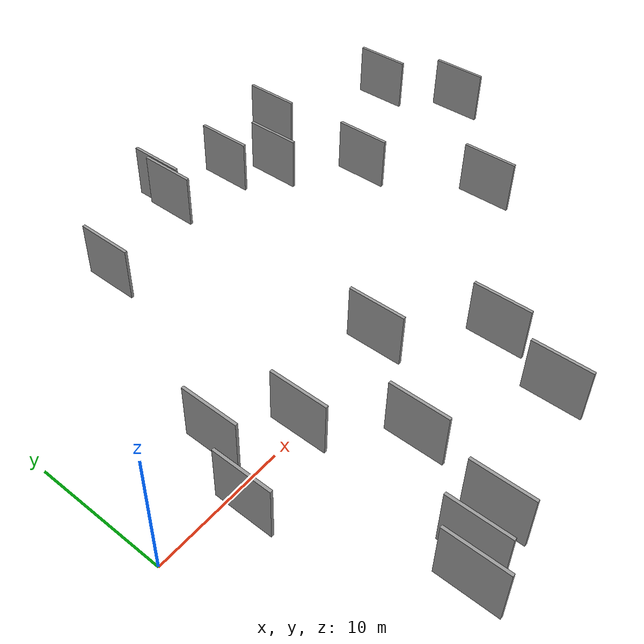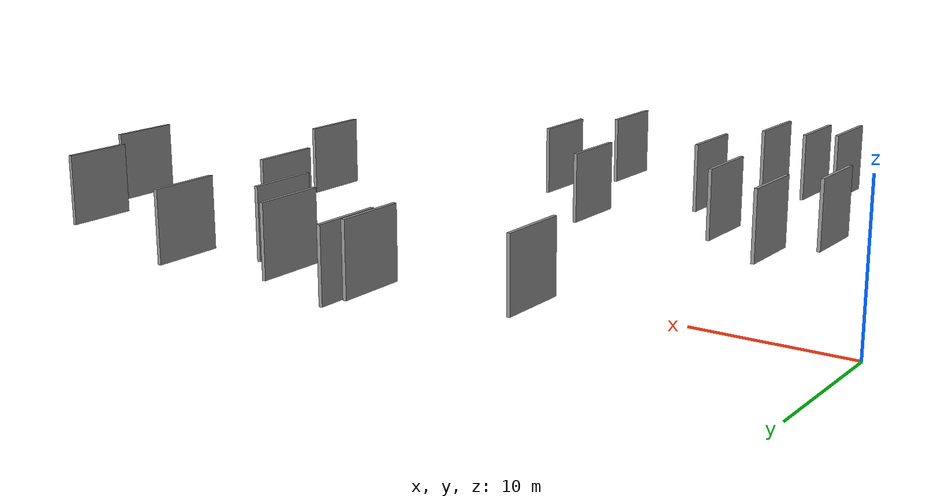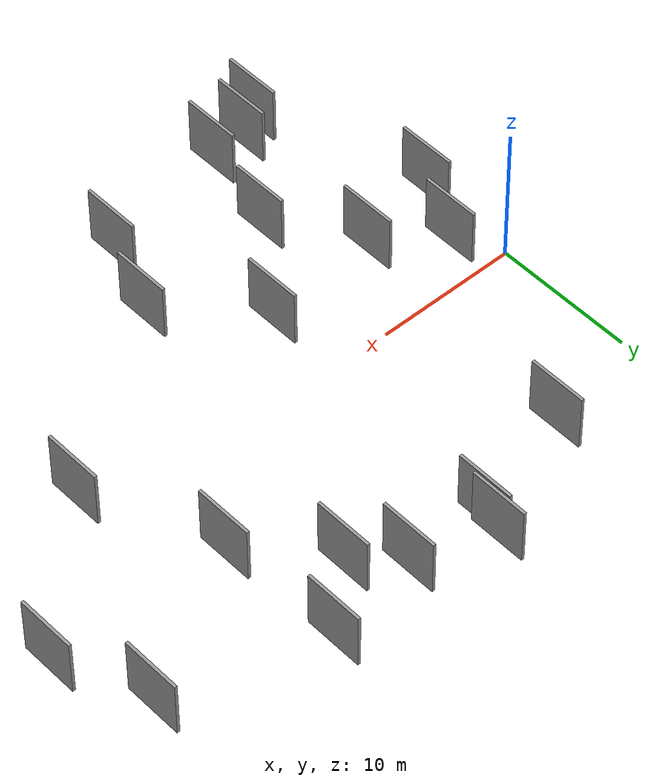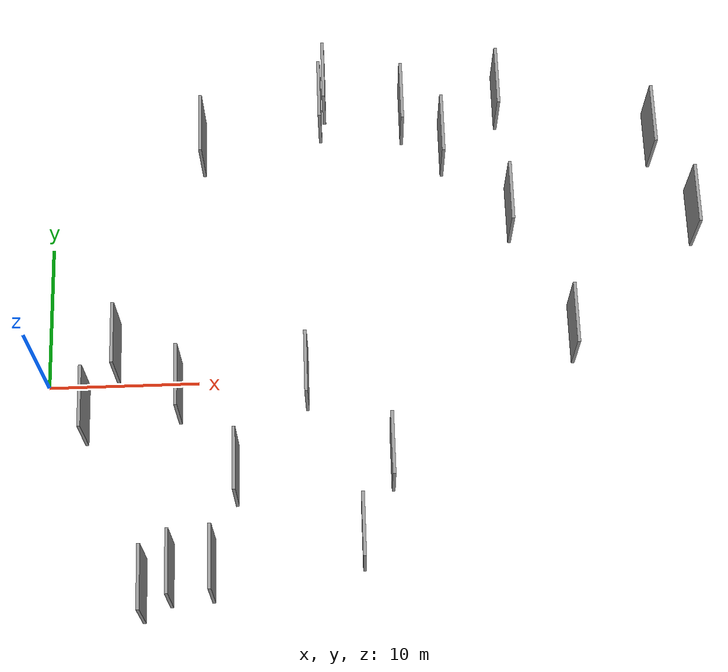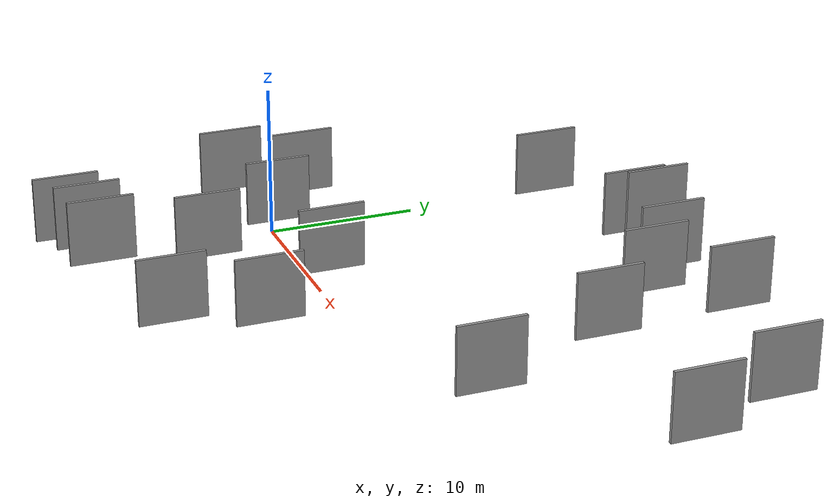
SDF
<sdf version="1.6">
 <world name="default">
  <scene>
   <sky><clouds><speed>12</speed></clouds></sky>
   <ambient>0.4 0.4 0.4 1</ambient>
   <background>0.7 0.7 0.7 1</background>
   <shadows>1</shadows>
  </scene>
  <gravity>0 0 -9.8066</gravity>
  <magnetic_field>6e-06 2.3e-05 -4.2e-05</magnetic_field>
  <physics default="0" name="default_physics" type="ode">
   <ode>
    <solver>
     <type>quick</type>
     <iters>10</iters>
     <sor>1.0</sor>
     <use_dynamic_moi_rescaling>0</use_dynamic_moi_rescaling>
    </solver>
    <constraints>
     <cfm>0</cfm>
     <erp>0.2</erp>
     <contact_max_correcting_vel>100</contact_max_correcting_vel>
     <contact_surface_layer>0.001</contact_surface_layer>
    </constraints>
   </ode>
   <max_step_size>0.004</max_step_size>
   <real_time_factor>1</real_time_factor>
   <real_time_update_rate>250</real_time_update_rate>
  </physics>
  <light name="sun" type="directional">
   <pose>0 0 10 0 0 0</pose>
   <diffuse>0.8 0.8 0.8 1</diffuse>
   <specular>0.2 0.2 0.2 1</specular>
   <attenuation>
    <range>1000</range>
    <constant>0.9</constant>
    <linear>0.01</linear>
    <quadratic>0.001</quadratic>
   </attenuation>
   <direction>-0.5 0.1 -0.9</direction>
  </light>
  <model name="grey_wall_1">
   <static>1</static>
   <pose>18.8763 18.6166 5.0 0.000000 0.000000 1.570796</pose>
   <link name="link">
    <pose>0 0 2.00 0 0 0</pose>
    <collision name="collision"><geometry><box><size>4.00 0.2 4.00</size></box></geometry></collision>
    <visual name="visual">
     <cast_shadows>0</cast_shadows>
     <geometry><box><size>4.00 0.2 4.00</size></box></geometry>
     <material>
      <script>
       <uri>model://grey_wall/materials/scripts</uri>
       <uri>model://grey_wall/materials/textures</uri>
       <name>vrc/grey_wall</name>
      </script>
     </material>
    </visual>
   </link>
  </model>
  <model name="grey_wall_2">
   <static>1</static>
   <pose>18.5828 17.2157 5.0 0.000000 0.000000 1.570796</pose>
   <link name="link">
    <pose>0 0 2.00 0 0 0</pose>
    <collision name="collision"><geometry><box><size>4.00 0.2 4.00</size></box></geometry></collision>
    <visual name="visual">
     <cast_shadows>0</cast_shadows>
     <geometry><box><size>4.00 0.2 4.00</size></box></geometry>
     <material>
      <script>
       <uri>model://grey_wall/materials/scripts</uri>
       <uri>model://grey_wall/materials/textures</uri>
       <name>vrc/grey_wall</name>
      </script>
     </material>
    </visual>
   </link>
  </model>
  <model name="grey_wall_3">
   <static>1</static>
   <pose>7.1273 -15.1228 5.0 0.000000 0.000000 1.570796</pose>
   <link name="link">
    <pose>0 0 2.00 0 0 0</pose>
    <collision name="collision"><geometry><box><size>4.00 0.2 4.00</size></box></geometry></collision>
    <visual name="visual">
     <cast_shadows>0</cast_shadows>
     <geometry><box><size>4.00 0.2 4.00</size></box></geometry>
     <material>
      <script>
       <uri>model://grey_wall/materials/scripts</uri>
       <uri>model://grey_wall/materials/textures</uri>
       <name>vrc/grey_wall</name>
      </script>
     </material>
    </visual>
   </link>
  </model>
  <model name="grey_wall_4">
   <static>1</static>
   <pose>24.0103 16.9003 5.0 0.000000 0.000000 1.570796</pose>
   <link name="link">
    <pose>0 0 2.00 0 0 0</pose>
    <collision name="collision"><geometry><box><size>4.00 0.2 4.00</size></box></geometry></collision>
    <visual name="visual">
     <cast_shadows>0</cast_shadows>
     <geometry><box><size>4.00 0.2 4.00</size></box></geometry>
     <material>
      <script>
       <uri>model://grey_wall/materials/scripts</uri>
       <uri>model://grey_wall/materials/textures</uri>
       <name>vrc/grey_wall</name>
      </script>
     </material>
    </visual>
   </link>
  </model>
  <model name="grey_wall_5">
   <static>1</static>
   <pose>8.7980 -14.2248 5.0 0.000000 0.000000 1.570796</pose>
   <link name="link">
    <pose>0 0 2.00 0 0 0</pose>
    <collision name="collision"><geometry><box><size>4.00 0.2 4.00</size></box></geometry></collision>
    <visual name="visual">
     <cast_shadows>0</cast_shadows>
     <geometry><box><size>4.00 0.2 4.00</size></box></geometry>
     <material>
      <script>
       <uri>model://grey_wall/materials/scripts</uri>
       <uri>model://grey_wall/materials/textures</uri>
       <name>vrc/grey_wall</name>
      </script>
     </material>
    </visual>
   </link>
  </model>
  <model name="grey_wall_6">
   <static>1</static>
   <pose>17.3325 -1.8003 5.0 0.000000 0.000000 1.570796</pose>
   <link name="link">
    <pose>0 0 2.00 0 0 0</pose>
    <collision name="collision"><geometry><box><size>4.00 0.2 4.00</size></box></geometry></collision>
    <visual name="visual">
     <cast_shadows>0</cast_shadows>
     <geometry><box><size>4.00 0.2 4.00</size></box></geometry>
     <material>
      <script>
       <uri>model://grey_wall/materials/scripts</uri>
       <uri>model://grey_wall/materials/textures</uri>
       <name>vrc/grey_wall</name>
      </script>
     </material>
    </visual>
   </link>
  </model>
  <model name="grey_wall_7">
   <static>1</static>
   <pose>3.3609 -3.6664 5.0 0.000000 0.000000 1.570796</pose>
   <link name="link">
    <pose>0 0 2.00 0 0 0</pose>
    <collision name="collision"><geometry><box><size>4.00 0.2 4.00</size></box></geometry></collision>
    <visual name="visual">
     <cast_shadows>0</cast_shadows>
     <geometry><box><size>4.00 0.2 4.00</size></box></geometry>
     <material>
      <script>
       <uri>model://grey_wall/materials/scripts</uri>
       <uri>model://grey_wall/materials/textures</uri>
       <name>vrc/grey_wall</name>
      </script>
     </material>
    </visual>
   </link>
  </model>
  <model name="grey_wall_8">
   <static>1</static>
   <pose>10.7779 14.9341 5.0 0.000000 0.000000 1.570796</pose>
   <link name="link">
    <pose>0 0 2.00 0 0 0</pose>
    <collision name="collision"><geometry><box><size>4.00 0.2 4.00</size></box></geometry></collision>
    <visual name="visual">
     <cast_shadows>0</cast_shadows>
     <geometry><box><size>4.00 0.2 4.00</size></box></geometry>
     <material>
      <script>
       <uri>model://grey_wall/materials/scripts</uri>
       <uri>model://grey_wall/materials/textures</uri>
       <name>vrc/grey_wall</name>
      </script>
     </material>
    </visual>
   </link>
  </model>
  <model name="grey_wall_9">
   <static>1</static>
   <pose>26.6018 14.4527 5.0 0.000000 0.000000 1.570796</pose>
   <link name="link">
    <pose>0 0 2.00 0 0 0</pose>
    <collision name="collision"><geometry><box><size>4.00 0.2 4.00</size></box></geometry></collision>
    <visual name="visual">
     <cast_shadows>0</cast_shadows>
     <geometry><box><size>4.00 0.2 4.00</size></box></geometry>
     <material>
      <script>
       <uri>model://grey_wall/materials/scripts</uri>
       <uri>model://grey_wall/materials/textures</uri>
       <name>vrc/grey_wall</name>
      </script>
     </material>
    </visual>
   </link>
  </model>
  <model name="grey_wall_10">
   <static>1</static>
   <pose>5.2843 0.4416 5.0 0.000000 0.000000 1.570796</pose>
   <link name="link">
    <pose>0 0 2.00 0 0 0</pose>
    <collision name="collision"><geometry><box><size>4.00 0.2 4.00</size></box></geometry></collision>
    <visual name="visual">
     <cast_shadows>0</cast_shadows>
     <geometry><box><size>4.00 0.2 4.00</size></box></geometry>
     <material>
      <script>
       <uri>model://grey_wall/materials/scripts</uri>
       <uri>model://grey_wall/materials/textures</uri>
       <name>vrc/grey_wall</name>
      </script>
     </material>
    </visual>
   </link>
  </model>
  <model name="grey_wall_11">
   <static>1</static>
   <pose>9.2692 -2.4537 5.0 0.000000 0.000000 1.570796</pose>
   <link name="link">
    <pose>0 0 2.00 0 0 0</pose>
    <collision name="collision"><geometry><box><size>4.00 0.2 4.00</size></box></geometry></collision>
    <visual name="visual">
     <cast_shadows>0</cast_shadows>
     <geometry><box><size>4.00 0.2 4.00</size></box></geometry>
     <material>
      <script>
       <uri>model://grey_wall/materials/scripts</uri>
       <uri>model://grey_wall/materials/textures</uri>
       <name>vrc/grey_wall</name>
      </script>
     </material>
    </visual>
   </link>
  </model>
  <model name="grey_wall_12">
   <static>1</static>
   <pose>22.5762 -7.2745 5.0 0.000000 0.000000 1.570796</pose>
   <link name="link">
    <pose>0 0 2.00 0 0 0</pose>
    <collision name="collision"><geometry><box><size>4.00 0.2 4.00</size></box></geometry></collision>
    <visual name="visual">
     <cast_shadows>0</cast_shadows>
     <geometry><box><size>4.00 0.2 4.00</size></box></geometry>
     <material>
      <script>
       <uri>model://grey_wall/materials/scripts</uri>
       <uri>model://grey_wall/materials/textures</uri>
       <name>vrc/grey_wall</name>
      </script>
     </material>
    </visual>
   </link>
  </model>
  <model name="grey_wall_13">
   <static>1</static>
   <pose>42.7972 8.8606 5.0 0.000000 0.000000 1.570796</pose>
   <link name="link">
    <pose>0 0 2.00 0 0 0</pose>
    <collision name="collision"><geometry><box><size>4.00 0.2 4.00</size></box></geometry></collision>
    <visual name="visual">
     <cast_shadows>0</cast_shadows>
     <geometry><box><size>4.00 0.2 4.00</size></box></geometry>
     <material>
      <script>
       <uri>model://grey_wall/materials/scripts</uri>
       <uri>model://grey_wall/materials/textures</uri>
       <name>vrc/grey_wall</name>
      </script>
     </material>
    </visual>
   </link>
  </model>
  <model name="grey_wall_14">
   <static>1</static>
   <pose>30.3722 17.8320 5.0 0.000000 0.000000 1.570796</pose>
   <link name="link">
    <pose>0 0 2.00 0 0 0</pose>
    <collision name="collision"><geometry><box><size>4.00 0.2 4.00</size></box></geometry></collision>
    <visual name="visual">
     <cast_shadows>0</cast_shadows>
     <geometry><box><size>4.00 0.2 4.00</size></box></geometry>
     <material>
      <script>
       <uri>model://grey_wall/materials/scripts</uri>
       <uri>model://grey_wall/materials/textures</uri>
       <name>vrc/grey_wall</name>
      </script>
     </material>
    </visual>
   </link>
  </model>
  <model name="grey_wall_15">
   <static>1</static>
   <pose>34.4041 0.8771 5.0 0.000000 0.000000 1.570796</pose>
   <link name="link">
    <pose>0 0 2.00 0 0 0</pose>
    <collision name="collision"><geometry><box><size>4.00 0.2 4.00</size></box></geometry></collision>
    <visual name="visual">
     <cast_shadows>0</cast_shadows>
     <geometry><box><size>4.00 0.2 4.00</size></box></geometry>
     <material>
      <script>
       <uri>model://grey_wall/materials/scripts</uri>
       <uri>model://grey_wall/materials/textures</uri>
       <name>vrc/grey_wall</name>
      </script>
     </material>
    </visual>
   </link>
  </model>
  <model name="grey_wall_16">
   <static>1</static>
   <pose>30.8314 9.4403 5.0 0.000000 0.000000 1.570796</pose>
   <link name="link">
    <pose>0 0 2.00 0 0 0</pose>
    <collision name="collision"><geometry><box><size>4.00 0.2 4.00</size></box></geometry></collision>
    <visual name="visual">
     <cast_shadows>0</cast_shadows>
     <geometry><box><size>4.00 0.2 4.00</size></box></geometry>
     <material>
      <script>
       <uri>model://grey_wall/materials/scripts</uri>
       <uri>model://grey_wall/materials/textures</uri>
       <name>vrc/grey_wall</name>
      </script>
     </material>
    </visual>
   </link>
  </model>
  <model name="grey_wall_17">
   <static>1</static>
   <pose>40.4534 14.6838 5.0 0.000000 0.000000 1.570796</pose>
   <link name="link">
    <pose>0 0 2.00 0 0 0</pose>
    <collision name="collision"><geometry><box><size>4.00 0.2 4.00</size></box></geometry></collision>
    <visual name="visual">
     <cast_shadows>0</cast_shadows>
     <geometry><box><size>4.00 0.2 4.00</size></box></geometry>
     <material>
      <script>
       <uri>model://grey_wall/materials/scripts</uri>
       <uri>model://grey_wall/materials/textures</uri>
       <name>vrc/grey_wall</name>
      </script>
     </material>
    </visual>
   </link>
  </model>
  <model name="grey_wall_18">
   <static>1</static>
   <pose>12.8412 -7.9581 5.0 0.000000 0.000000 1.570796</pose>
   <link name="link">
    <pose>0 0 2.00 0 0 0</pose>
    <collision name="collision"><geometry><box><size>4.00 0.2 4.00</size></box></geometry></collision>
    <visual name="visual">
     <cast_shadows>0</cast_shadows>
     <geometry><box><size>4.00 0.2 4.00</size></box></geometry>
     <material>
      <script>
       <uri>model://grey_wall/materials/scripts</uri>
       <uri>model://grey_wall/materials/textures</uri>
       <name>vrc/grey_wall</name>
      </script>
     </material>
    </visual>
   </link>
  </model>
  <model name="grey_wall_19">
   <static>1</static>
   <pose>20.6259 -12.3068 5.0 0.000000 0.000000 1.570796</pose>
   <link name="link">
    <pose>0 0 2.00 0 0 0</pose>
    <collision name="collision"><geometry><box><size>4.00 0.2 4.00</size></box></geometry></collision>
    <visual name="visual">
     <cast_shadows>0</cast_shadows>
     <geometry><box><size>4.00 0.2 4.00</size></box></geometry>
     <material>
      <script>
       <uri>model://grey_wall/materials/scripts</uri>
       <uri>model://grey_wall/materials/textures</uri>
       <name>vrc/grey_wall</name>
      </script>
     </material>
    </visual>
   </link>
  </model>
  <model name="grey_wall_20">
   <static>1</static>
   <pose>11.3657 -14.0143 5.0 0.000000 0.000000 1.570796</pose>
   <link name="link">
    <pose>0 0 2.00 0 0 0</pose>
    <collision name="collision"><geometry><box><size>4.00 0.2 4.00</size></box></geometry></collision>
    <visual name="visual">
     <cast_shadows>0</cast_shadows>
     <geometry><box><size>4.00 0.2 4.00</size></box></geometry>
     <material>
      <script>
       <uri>model://grey_wall/materials/scripts</uri>
       <uri>model://grey_wall/materials/textures</uri>
       <name>vrc/grey_wall</name>
      </script>
     </material>
    </visual>
   </link>
  </model>
 </world>
</sdf>
